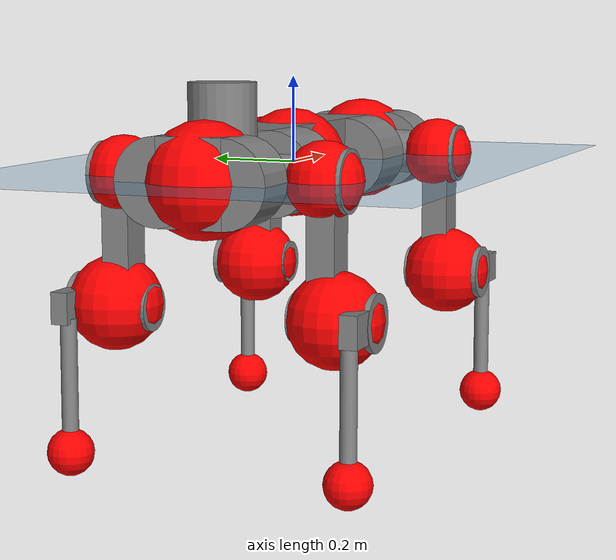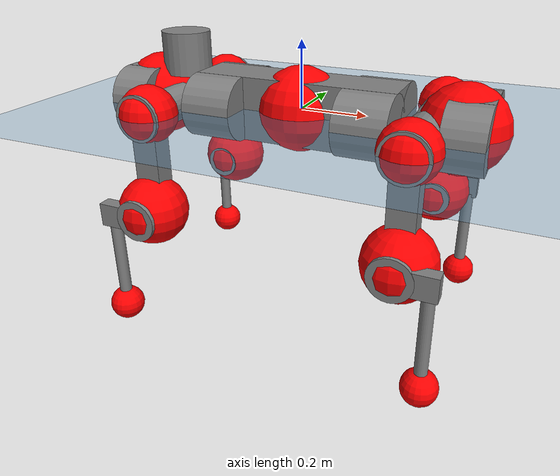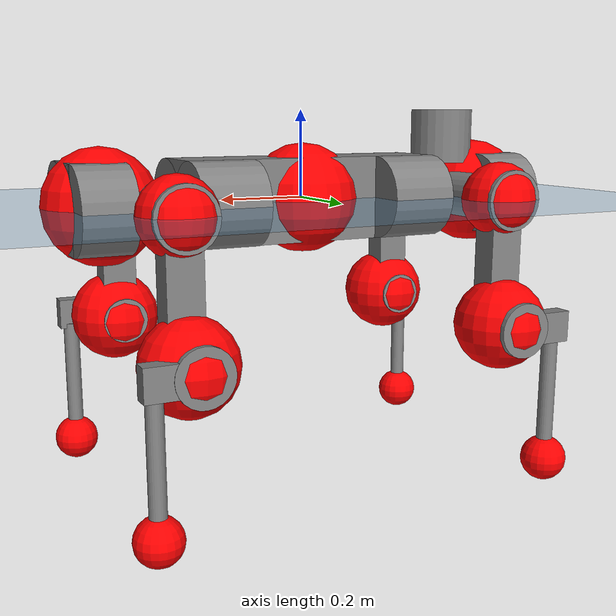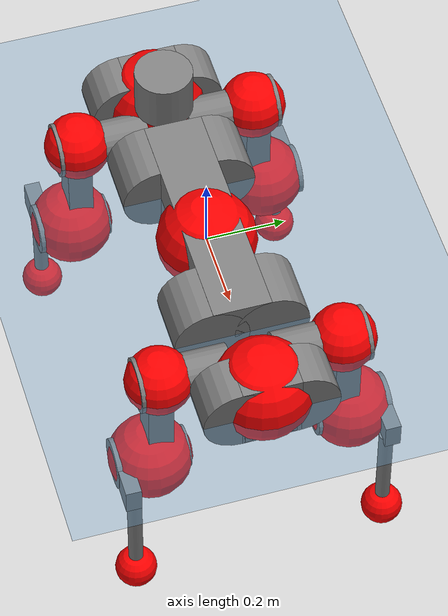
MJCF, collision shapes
<mujoco model="anymal_c">
  <compiler angle="radian" assetdir="assets" balanceinertia="true" inertiafromgeom="false"/>

  <option timestep="0.005" density="1.2" viscosity="2e-05"/>

  <size nkey="1"/>

  <visual>
    <quality shadowsize="8192"/>
    <map shadowclip="0.5"/>
  </visual>

  <default>
    <default class="/">
      <material specular="0" shininess="0.25"/>
      <geom contype="0" conaffinity="0" group="1" solref="-1000 -80"/>
      <site size="0.01 0.005 0.005" group="5"/>
      <general forcelimited="true" forcerange="-80 80" biastype="affine" gainprm="80" biasprm="0 -80 -2"/>
      <default class="anymal_c">
        <joint armature="0.01" damping="0.01" frictionloss="0.1"/>
        <default class="visual">
          <geom type="mesh" group="2"/>
          <default class="visual_zflip"/>
        </default>
        <default class="collision">
          <geom type="cylinder" group="3"/>
          <default class="foot">
            <geom size="0.03 0 0" type="sphere" condim="6" priority="1" friction="0.8 0.02 0.01" solimp="0.015 1 0.03"/>
          </default>
        </default>
      </default>
      <default class="reward_collision_sphere">
        <geom group="5" rgba="1 0 0 1"/>
      </default>
    </default>
  </default>

  <asset>
    <texture type="skybox" colorspace="auto" name="//unnamed_texture_0" builtin="gradient" rgb1="0.95 0.95 0.95" rgb2="0.95 0.95 0.95" width="100" height="600"/>
    <texture type="2d" colorspace="auto" name="texplane" builtin="checker" rgb1="0.345 0.575 0.748" rgb2="0.345 0.575 0.748" markrgb="1 1 1" width="512" height="512"/>
    <texture type="2d" colorspace="linear" name="base" file="base.png"/>
    <texture type="2d" colorspace="linear" name="top_shell" file="top_shell.png"/>
    <texture type="2d" colorspace="linear" name="bottom_shell" file="bottom_shell.png"/>
    <texture type="2d" colorspace="linear" name="remote" file="remote.png"/>
    <texture type="2d" colorspace="linear" name="hatch" file="hatch.png"/>
    <texture type="2d" colorspace="linear" name="handle" file="handle.png"/>
    <texture type="2d" colorspace="linear" name="face" file="face.png"/>
    <texture type="2d" colorspace="linear" name="battery" file="battery.png"/>
    <texture type="2d" colorspace="linear" name="lidar_cage" file="lidar_cage.png"/>
    <texture type="2d" colorspace="linear" name="depth_camera" file="depth_camera.png"/>
    <texture type="2d" colorspace="linear" name="wide_angle_camera" file="wide_angle_camera.png"/>
    <texture type="2d" colorspace="linear" name="lidar" file="lidar.png"/>
    <texture type="2d" colorspace="linear" name="drive" file="drive.png"/>
    <texture type="2d" colorspace="linear" name="hip_l" file="hip_l.png"/>
    <texture type="2d" colorspace="linear" name="shank_l" file="shank_l.png"/>
    <texture type="2d" colorspace="linear" name="foot" file="foot.png"/>
    <texture type="2d" colorspace="linear" name="thigh" file="thigh.png"/>
    <texture type="2d" colorspace="linear" name="shank_r" file="shank_r.png"/>
    <texture type="2d" colorspace="linear" name="hip_r" file="hip_r.png"/>
    <material name="MatPlane" class="/" texture="texplane" texuniform="true" texrepeat="2 2" specular="0.9" shininess="0.5"/>
    <material name="black_plastic" class="/" rgba="0.007 0.007 0.007 1"/>
    <material name="green" class="/" rgba="0.052 0.178 0.033 1"/>
    <material name="red" class="/" rgba="0.178 0.006 0.005 1"/>
    <material name="yellow" class="/" rgba="0.178 0.119 0.006 1"/>
    <material name="lwl" class="/" rgba="0.8 0.8 0.8 1"/>
    <material name="base" class="/" texture="base"/>
    <material name="top_shell" class="/" texture="top_shell"/>
    <material name="bottom_shell" class="/" texture="bottom_shell"/>
    <material name="hip_l" class="/" texture="hip_l"/>
    <material name="thigh" class="/" texture="thigh"/>
    <material name="shank_l" class="/" texture="shank_l"/>
    <material name="foot" class="/" texture="foot"/>
    <material name="hip_r" class="/" texture="hip_r"/>
    <material name="shank" class="/" texture="shank_r"/>
    <material name="hatch" class="/" texture="hatch"/>
    <material name="remote" class="/" texture="remote"/>
    <material name="handle" class="/" texture="handle"/>
    <material name="face" class="/" texture="face"/>
    <material name="depth_camera" class="/" texture="depth_camera"/>
    <material name="wide_angle_camera" class="/" texture="wide_angle_camera"/>
    <material name="battery" class="/" texture="battery"/>
    <material name="lidar_cage" class="/" texture="lidar_cage"/>
    <material name="lidar" class="/" texture="lidar"/>
    <material name="drive" class="/" texture="drive"/>
    <mesh name="base_0" class="/" file="base_0.obj"/>
    <mesh name="base_1" class="/" file="base_1.obj"/>
    <mesh name="base_2" class="/" file="base_2.obj"/>
    <mesh name="base_3" class="/" file="base_3.obj"/>
    <mesh name="base_4" class="/" file="base_4.obj"/>
    <mesh name="base_5" class="/" file="base_5.obj"/>
    <mesh name="top_shell" class="/" file="top_shell.obj"/>
    <mesh name="bottom_shell" class="/" file="bottom_shell.obj"/>
    <mesh name="remote" class="/" file="remote.obj"/>
    <mesh name="handle" class="/" file="handle.obj"/>
    <mesh name="face" class="/" file="face.obj"/>
    <mesh name="wide_angle_camera" class="/" file="wide_angle_camera.obj"/>
    <mesh name="depth_camera" class="/" file="depth_camera.obj"/>
    <mesh name="battery" class="/" file="battery.obj"/>
    <mesh name="lidar_cage" class="/" file="lidar_cage.obj"/>
    <mesh name="lidar" class="/" file="lidar.obj"/>
    <mesh name="drive" class="/" file="drive.obj"/>
    <mesh name="hip_l" class="/" file="hip_l.obj"/>
    <mesh name="thigh" class="/" file="thigh.obj"/>
    <mesh name="shank_l" class="/" file="shank_l.obj"/>
    <mesh name="foot" class="/" file="foot.obj"/>
    <mesh name="hip_r" class="/" file="hip_r.obj"/>
    <mesh name="hatch" class="/" file="hatch.obj"/>
    <mesh name="shank_r" class="/" file="shank_r.obj"/>
  </asset>

  <worldbody>
    <geom name="floor" class="/" size="100 100 0.125" type="plane" group="0" material="MatPlane"/>
    <light name="toplight_shadow" class="/" pos="0 0 5" dir="0.0990148 0.0990148 -0.990148" type="directional" ambient="0.04 0.04 0.04" diffuse="0.55 0.55 0.55" specular="0.12 0.12 0.12"/>
    <light name="toplight_fill" class="/" pos="0 0 5" dir="0.0990148 0.0990148 -0.990148" type="directional" castshadow="false" ambient="0.04 0.04 0.04" diffuse="0.3 0.3 0.3" specular="0.08 0.08 0.08"/>
    <body name="trunk" childclass="anymal_c" pos="-0.00351326 0.00173738 -0.00131868" quat="0.999999 -0.000413097 0.00107826 -0.000376599">
      <inertial pos="0.00268732 -0.00271683 0.0518215" quat="0.497582 0.50137 0.501035 0.500004" mass="23.4364" diaginertia="0.798717 0.916912 0.249584"/>
      <joint name="//unnamed_joint_0" type="free" armature="0" damping="0" frictionloss="0"/>
      <geom name="//unnamed_geom_1" class="visual" material="green" mesh="base_0"/>
      <geom name="//unnamed_geom_2" class="visual" material="yellow" mesh="base_1"/>
      <geom name="//unnamed_geom_3" class="visual" material="red" mesh="base_2"/>
      <geom name="//unnamed_geom_4" class="visual" material="black_plastic" mesh="base_3"/>
      <geom name="//unnamed_geom_5" class="visual" material="lwl" mesh="base_4"/>
      <geom name="//unnamed_geom_6" class="visual" material="base" mesh="base_5"/>
      <geom name="trunk_1" class="collision" size="0.307464 0.0742155 0.0954199" type="box"/>
      <geom name="trunk_2" class="collision" size="0.0954199 0.076866" pos="0.230986 0.0761753 0" quat="0.707107 0 0.707107 0"/>
      <geom name="trunk_3" class="collision" size="0.0954199 0.076866" pos="-0.230986 0.0761753 0" quat="0.707107 0 0.707107 0"/>
      <geom name="trunk_4" class="collision" size="0.0954199 0.076866" pos="0.230986 -0.0761753 0" quat="0.707107 0 0.707107 0"/>
      <geom name="trunk_5" class="collision" size="0.0954199 0.076866" pos="-0.230986 -0.0761753 0" quat="0.707107 0 0.707107 0"/>
      <geom name="//unnamed_geom_12" class="visual" material="top_shell" mesh="top_shell"/>
      <geom name="//unnamed_geom_13" class="visual" material="bottom_shell" mesh="bottom_shell"/>
      <geom name="//unnamed_geom_14" class="visual" material="remote" mesh="remote"/>
      <geom name="//unnamed_geom_15" class="visual" material="handle" mesh="handle"/>
      <geom name="//unnamed_geom_16" class="visual" pos="0.440201 0 0" quat="1 0 0 0" material="face" mesh="face"/>
      <geom name="trunk_6" class="collision" size="0.0583122 0.0742155 0.0954199" pos="0.498611 0 0" type="box"/>
      <geom name="//unnamed_geom_18" class="collision" size="0.0954199 0.0583122" pos="0.498611 0.0761753 0" quat="0.707107 0 0.707107 0"/>
      <geom name="//unnamed_geom_19" class="collision" size="0.0954199 0.0583122" pos="0.498611 -0.0761753 0" quat="0.707107 0 0.707107 0"/>
      <geom name="//unnamed_geom_20" class="visual" pos="0.490273 0 -0.029849" quat="0.965926 0 0.258819 0" material="depth_camera" mesh="depth_camera"/>
      <geom name="//unnamed_geom_21" class="visual" pos="0.544809 0 0.0154257" material="wide_angle_camera" mesh="wide_angle_camera"/>
      <geom name="//unnamed_geom_22" class="visual_zflip" pos="-0.440201 0 0" quat="0 0 0 1" material="face" mesh="face"/>
      <geom name="trunk_7" class="collision" size="0.0583122 0.0742155 0.0954199" pos="-0.498611 0 0" quat="0 0 0 1" type="box"/>
      <geom name="//unnamed_geom_24" class="collision" size="0.0954199 0.0583122" pos="-0.498611 -0.0761753 0" quat="0 -0.707107 0 0.707107"/>
      <geom name="//unnamed_geom_25" class="collision" size="0.0954199 0.0583122" pos="-0.498611 0.0761753 0" quat="0 -0.707107 0 0.707107"/>
      <geom name="//unnamed_geom_26" class="visual" pos="-0.490273 0 -0.029849" quat="0 -0.258819 0 0.965926" material="depth_camera" mesh="depth_camera"/>
      <geom name="//unnamed_geom_27" class="visual_zflip" pos="-0.544809 0 0.0154257" quat="0 0 0 1" material="wide_angle_camera" mesh="wide_angle_camera"/>
      <geom name="//unnamed_geom_28" class="visual" material="battery" mesh="battery"/>
      <geom name="//unnamed_geom_29" class="visual" pos="0 0.0835478 0.0301742" quat="0.683013 -0.183013 0.183013 0.683013" material="depth_camera" mesh="depth_camera"/>
      <geom name="//unnamed_geom_30" class="visual" pos="0 -0.0835478 0.0301742" quat="0.683013 0.183013 0.183013 -0.683013" material="depth_camera" mesh="depth_camera"/>
      <geom name="//unnamed_geom_31" class="visual" pos="-0.38657 0 0.0757374" quat="1 0 0 0" material="lidar_cage" mesh="lidar_cage"/>
      <geom name="trunk_8" class="collision" size="0.0742155 0.0636133" pos="-0.38657 0 0.137564"/>
      <geom name="//unnamed_geom_33" class="visual" pos="-0.38657 1.02984e-05 0.146529" quat="0.707107 0 0 -0.707107" material="lidar" mesh="lidar"/>
      <geom name="//unnamed_geom_34" class="visual" pos="0.318495 0.113154 9.96672e-10" quat="0.258819 0.965926 0 0" material="drive" mesh="drive"/>
      <geom name="//unnamed_geom_35" class="visual" pos="0.318495 -0.113154 -9.96672e-10" quat="0.258819 -0.965926 0 0" material="drive" mesh="drive"/>
      <geom name="//unnamed_geom_36" class="visual" pos="-0.318495 0.113154 -9.96672e-10" quat="0 0 0.965926 -0.258819" material="drive" mesh="drive"/>
      <geom name="//unnamed_geom_37" class="visual" pos="-0.318495 -0.113154 9.96672e-10" quat="0 0 -0.965926 -0.258819" material="drive" mesh="drive"/>
      <geom name="//unnamed_geom_38" class="visual" pos="0.123193 0 0.0752221" quat="1 0 0 0" material="hatch" mesh="hatch"/>
      <geom name="//unnamed_geom_39" class="reward_collision_sphere" size="0.127227"/>
      <geom name="//unnamed_geom_40" class="reward_collision_sphere" size="0.127227" pos="0.477902 0 0"/>
      <geom name="//unnamed_geom_41" class="reward_collision_sphere" size="0.127227" pos="-0.477902 0 0"/>
      <site name="imu" pos="0.276007 -0.00164864 0.0721878" size="0.0106022"/>
      <camera name="track" pos="0 -2.17644 0" quat="0.707107 0.707107 0 0" mode="trackcom"/>
      <camera name="ego_camera" pos="0.477902 0 -0.0412176" quat="-0.5 -0.5 0.5 0.5"/>
      <body name="LF_HIP" pos="0.321491 0.113687 -0.000804803" quat="0.258242 0.966079 0.000928872 0.000899418">
        <inertial pos="0.0645466 -0.0181262 -0.00773963" quat="-0.131219 0.707912 -0.135975 0.680553" mass="3.19141" diaginertia="0.00762161 0.00757378 0.00370277"/>
        <joint name="LF_HAA" pos="0 0 0" axis="0.999527 0.00943867 -0.0292632" stiffness="0.0175468" range="-0.749271 0.483562" armature="0.0131404" damping="0.024275" frictionloss="0.111199"/>
        <geom name="//unnamed_geom_42" class="visual" pos="0 5.86297e-05 -9.62988e-06" quat="0.258819 -0.965926 0 0" material="hip_l" mesh="hip_l"/>
        <geom name="//unnamed_geom_43" class="visual" pos="0.0636141 -0.0774066 -0.0442634" quat="0.183013 -0.683013 0.683013 0.183013" material="drive" mesh="drive"/>
        <geom name="//unnamed_geom_44" class="collision" size="0.0530111 0.0742155" pos="0.0636141 -0.0130149 -0.00711519" quat="-0.353553 -0.612372 0.612372 -0.353553"/>
        <body name="LF_THIGH" pos="0.0640132 -0.0792898 -0.0428689" quat="0.183512 -0.682926 0.682894 0.183281">
          <inertial pos="0.0322338 0.000367371 -0.247776" quat="0.993574 -0.00922686 -0.0787827 0.0807383" mass="3.60057" diaginertia="0.0399065 0.0445203 0.00472521"/>
          <joint name="LF_HFE" pos="0 0 0" axis="0.999986 0.00188322 -0.00499652" stiffness="0.00165996" range="-3.11287 3.13828" armature="0.00913865" damping="0.00680275" frictionloss="0.104851"/>
          <geom name="//unnamed_geom_45" class="visual" pos="-0.000521537 -8.21821e-07 0" quat="0.707107 0 0 -0.707107" material="thigh" mesh="thigh"/>
          <geom name="//unnamed_geom_46" class="collision" size="0.0689144 0.0424088" pos="0.0424802 0 0" quat="0.5 0.5 -0.5 -0.5"/>
          <geom name="//unnamed_geom_47" class="collision" size="0.0397583 0.0318066 0.149824" pos="0.0318601 0 -0.145616" quat="0.707107 0 0 -0.707107" type="box"/>
          <geom name="//unnamed_geom_48" class="visual" pos="0.106519 0 -0.293675" quat="1 0 0 0" material="drive" mesh="drive"/>
          <geom name="//unnamed_geom_49" class="collision" size="0.0530111 0.0742155" pos="0.0321788 0 -0.293675" quat="0.707107 0 0.707107 0"/>
          <geom name="//unnamed_geom_50" class="reward_collision_sphere" size="0.0848177" pos="0.0265501 0 0"/>
          <body name="LF_SHANK" pos="0.107391 0.00560272 -0.296545" quat="1 0.000168073 0.000156048 0.000578161">
            <inertial pos="0.00688837 -0.0690231 -0.0825625" quat="0.993031 -0.112769 0.0201973 -0.0276392" mass="0.70023" diaginertia="0.0140112 0.0139482 0.00134399"/>
            <joint name="LF_KFE" pos="0 0 0" axis="0.99992 -0.00810176 -0.00970264" range="-3.15291 3.09247" armature="0.0101514" damping="0.0147393" frictionloss="0.114974"/>
            <geom name="//unnamed_geom_51" class="visual" pos="-0.000170062 -0.000906779 0" quat="0.707107 0 0 -0.707107" material="shank_l" mesh="shank_l"/>
            <geom name="LF_kfe_act" class="collision" size="0.0636133 0.0212044" pos="0.0212401 0 0" quat="0.5 0.5 -0.5 -0.5"/>
            <geom name="//unnamed_geom_53" class="collision" size="0.0609617 0.0357825 0.0201442" pos="0.0212401 -0.0625714 0" quat="0.5 0.5 -0.5 -0.5" type="box"/>
            <geom name="//unnamed_geom_54" class="visual" pos="0.0138592 -0.096001 -0.348258" quat="0.382683 0 0 -0.92388" material="foot" mesh="foot"/>
            <geom name="LF_calf" class="collision" size="0.0185539 0.149758" pos="0.0138592 -0.0957088 -0.174129" quat="0.707107 0 0 -0.707107"/>
            <geom name="LF_foot" class="foot" size="0.0310851" pos="0.0138592 -0.0957088 -0.325073" quat="0.707107 0 0 -0.707107"/>
            <geom name="//unnamed_geom_57" class="reward_collision_sphere" size="0.106022" pos="-0.0531002 0 0"/>
            <geom name="//unnamed_geom_58" class="reward_collision_sphere" size="0.0530111" pos="0.0138592 -0.0957088 -0.325073"/>
            <site name="LF_foot" class="foot" pos="0.0138592 -0.0957088 -0.325073" quat="0.707107 0 0 -0.707107" size="0.0106022"/>
          </body>
        </body>
      </body>
      <body name="RF_HIP" pos="0.323991 -0.118674 0.00231785" quat="0.258313 -0.966061 0.000859985 -0.000745091">
        <inertial pos="0.0551387 0.0194243 -0.00453675" quat="0.13502 0.679418 0.128443 0.709692" mass="3.20684" diaginertia="0.00735743 0.00712531 0.00358555"/>
        <joint name="RF_HAA" pos="0 0 0" axis="0.99987 0.00909211 0.0133504" range="-0.406583 0.76384" armature="0.0102013" damping="0.0202858" frictionloss="0.120122"/>
        <geom name="//unnamed_geom_59" class="visual" pos="0 -5.86293e-05 -9.62986e-06" quat="0.258819 0.965926 0 0" material="hip_r" mesh="hip_r"/>
        <geom name="//unnamed_geom_60" class="visual" pos="0.0636141 0.0774066 -0.0442634" quat="0.183013 0.683013 0.683013 -0.183013" material="drive" mesh="drive"/>
        <geom name="//unnamed_geom_61" class="collision" size="0.0530111 0.0742155" pos="0.0636141 0.0130149 -0.00711519" quat="-0.353553 0.612372 0.612372 0.353553"/>
        <body name="RF_THIGH" pos="0.0640189 0.0776464 -0.0432945" quat="0.182963 0.682591 0.683231 -0.183818">
          <inertial pos="0.0319827 -0.00620577 -0.250739" quat="0.992915 -0.00468794 -0.0791044 0.0885469" mass="3.7659" diaginertia="0.0406662 0.0481631 0.00497053"/>
          <joint name="RF_HFE" pos="0 0 0" axis="0.999999 -0.00133765 0.000456033" stiffness="0.00792494" range="-3.18497 3.1574" armature="0.00925689" damping="0.0176116" frictionloss="0.11875"/>
          <geom name="//unnamed_geom_62" class="visual" pos="-0.000521537 -8.21821e-07 0" quat="0.707107 0 0 -0.707107" material="thigh" mesh="thigh"/>
          <geom name="//unnamed_geom_63" class="collision" size="0.0689144 0.0424088" pos="0.0424802 0 0" quat="0.5 0.5 0.5 0.5"/>
          <geom name="//unnamed_geom_64" class="collision" size="0.0397583 0.0318066 0.149824" pos="0.0318601 0 -0.145616" quat="0.707107 0 0 0.707107" type="box"/>
          <geom name="//unnamed_geom_65" class="visual" pos="0.106519 0 -0.293675" quat="1 0 0 0" material="drive" mesh="drive"/>
          <geom name="//unnamed_geom_66" class="collision" size="0.0530111 0.0742155" pos="0.0321788 0 -0.293675" quat="0.707107 0 0.707107 0"/>
          <geom name="//unnamed_geom_67" class="reward_collision_sphere" size="0.0848177" pos="0.0265501 0 0"/>
          <body name="RF_SHANK" pos="0.10474 0.00269177 -0.296561" quat="0.999997 0.00125596 0.0011743 -0.00200391">
            <inertial pos="-0.000540243 0.0671908 -0.0857253" quat="0.993733 0.107519 0.0060245 0.0299684" mass="0.704525" diaginertia="0.0134749 0.0131899 0.00118064"/>
            <joint name="RF_KFE" pos="0 0 0" axis="0.999952 0.00760721 -0.0061169" range="-3.0511 3.11126" armature="0.0118688" damping="0" frictionloss="0.0885097"/>
            <geom name="//unnamed_geom_68" class="visual" pos="-0.000170061 0.000906777 0" quat="0.707107 0 0 0.707107" material="shank" mesh="shank_r"/>
            <geom name="RF_kfe_act" class="collision" size="0.0636133 0.0212044" pos="0.0212401 0 0" quat="0.5 0.5 0.5 0.5"/>
            <geom name="//unnamed_geom_70" class="collision" size="0.0609617 0.0357825 0.0201442" pos="0.0212401 0.0625714 0" quat="0.5 0.5 0.5 0.5" type="box"/>
            <geom name="//unnamed_geom_71" class="visual" pos="0.0138591 0.096001 -0.348258" quat="0.382683 0 0 0.92388" material="foot" mesh="foot"/>
            <geom name="RF_calf" class="collision" size="0.0185539 0.149758" pos="0.0138592 0.0957088 -0.174129" quat="0.707107 0 0 0.707107"/>
            <geom name="RF_foot" class="foot" size="0.0292223" pos="0.0138592 0.0957088 -0.325073" quat="0.707107 0 0 0.707107"/>
            <geom name="//unnamed_geom_74" class="reward_collision_sphere" size="0.106022" pos="-0.0531002 0 0"/>
            <geom name="//unnamed_geom_75" class="reward_collision_sphere" size="0.0530111" pos="0.0138592 0.0957088 -0.325073"/>
            <site name="RF_foot" class="foot" pos="0.0138592 0.0957088 -0.325073" quat="0.707107 0 0 0.707107" size="0.0106022"/>
          </body>
        </body>
      </body>
      <body name="LH_HIP" pos="-0.324952 0.116526 6.25122e-05" quat="0.00042741 0.000559463 0.965818 -0.25922">
        <inertial pos="0.055719 0.0226563 -0.00947204" quat="0.131467 0.668288 0.129082 0.720725" mass="3.30459" diaginertia="0.00775595 0.00755066 0.00400213"/>
        <joint name="LH_HAA" pos="0 0 0" axis="0.999975 -0.00271489 -0.00658931" stiffness="0.000647767" range="-0.510353 0.757208" armature="0.0104858" damping="0.00815089" frictionloss="0.0953264"/>
        <geom name="//unnamed_geom_76" class="visual" pos="0 -5.86293e-05 -9.62986e-06" quat="-0.258819 -0.965926 0 0" material="hip_r" mesh="hip_r"/>
        <geom name="//unnamed_geom_77" class="visual" pos="0.0636141 0.0774066 -0.0442634" quat="0.183013 0.683013 0.683013 -0.183013" material="drive" mesh="drive"/>
        <geom name="//unnamed_geom_78" class="collision" size="0.0530111 0.0742155" pos="0.0636141 0.0130149 -0.00711519" quat="-0.353553 0.612372 0.612372 0.353553"/>
        <body name="LH_THIGH" pos="0.0636212 0.0805826 -0.0458091" quat="0.183987 0.682689 0.683166 -0.18267">
          <inertial pos="0.0352027 -0.00485905 -0.251816" quat="0.993088 0.00374224 -0.0794015 0.0863555" mass="3.71035" diaginertia="0.040608 0.0455087 0.0051257"/>
          <joint name="LH_HFE" pos="0 0 0" axis="0.999809 -0.00220553 -0.0194168" stiffness="0.00672587" range="-3.15956 3.13279" armature="0.0083335" damping="0.0185168" frictionloss="0.0914967"/>
          <geom name="//unnamed_geom_79" class="visual" pos="-0.000521537 -8.21821e-07 0" quat="0.707107 0 0 -0.707107" material="thigh" mesh="thigh"/>
          <geom name="//unnamed_geom_80" class="collision" size="0.0689144 0.0424088" pos="0.0424802 0 0" quat="0.5 0.5 -0.5 -0.5"/>
          <geom name="//unnamed_geom_81" class="collision" size="0.0397583 0.0318066 0.149824" pos="0.0318601 0 -0.145616" quat="0.707107 0 0 -0.707107" type="box"/>
          <geom name="//unnamed_geom_82" class="visual" pos="0.106519 0 -0.293675" quat="1 0 0 0" material="drive" mesh="drive"/>
          <geom name="//unnamed_geom_83" class="collision" size="0.0530111 0.0742155" pos="0.0321788 0 -0.293675" quat="0.707107 0 0.707107 0"/>
          <geom name="//unnamed_geom_84" class="reward_collision_sphere" size="0.0848177" pos="0.0265501 0 0"/>
          <body name="LH_SHANK" pos="0.106909 -0.00277866 -0.288009" quat="0.999996 -0.00138855 -0.00239532 0.000563897">
            <inertial pos="0.00760751 0.0668098 -0.0895526" quat="0.992662 0.118294 -0.0016278 0.0250161" mass="0.728431" diaginertia="0.0135792 0.0137465 0.00129073"/>
            <joint name="LH_KFE" pos="0 0 0" axis="0.999968 0.000216234 0.00795849" range="-3.09835 3.14743" armature="0.0118716" damping="0.00626748" frictionloss="0.116436"/>
            <geom name="//unnamed_geom_85" class="visual" pos="-0.000170061 0.000906777 0" quat="-0.707107 0 0 -0.707107" material="shank" mesh="shank_r"/>
            <geom name="LH_kfe_act" class="collision" size="0.0636133 0.0212044" pos="0.0212401 0 0" quat="0.5 0.5 -0.5 -0.5"/>
            <geom name="//unnamed_geom_87" class="collision" size="0.0609617 0.0357825 0.0201442" pos="0.0212401 0.0625714 0" quat="0.5 0.5 -0.5 -0.5" type="box"/>
            <geom name="//unnamed_geom_88" class="visual" pos="0.0138591 0.096001 -0.348258" quat="-0.382683 0 0 -0.92388" material="foot" mesh="foot"/>
            <geom name="LH_calf" class="collision" size="0.0185539 0.149758" pos="0.0138592 0.0957088 -0.174129" quat="0.707107 0 0 -0.707107"/>
            <geom name="LH_foot" class="foot" size="0.0346597" pos="0.0138592 0.0957088 -0.325073" quat="0.707107 0 0 -0.707107"/>
            <geom name="//unnamed_geom_91" class="reward_collision_sphere" size="0.106022" pos="-0.0531002 0 0"/>
            <geom name="//unnamed_geom_92" class="reward_collision_sphere" size="0.0530111" pos="0.0138592 0.0957088 -0.325073"/>
            <site name="LH_foot" class="foot" pos="0.0138592 0.0957088 -0.325073" quat="0.707107 0 0 -0.707107" size="0.0106022"/>
          </body>
        </body>
      </body>
      <body name="RH_HIP" pos="-0.313818 -0.111004 -0.000652141" quat="0.000423685 -0.000285484 -0.965768 -0.259407">
        <inertial pos="0.0588173 -0.0160641 -0.00945117" quat="-0.131966 0.719188 -0.151258 0.665188" mass="3.23017" diaginertia="0.00769544 0.00723091 0.00369676"/>
        <joint name="RH_HAA" pos="0 0 0" axis="0.999673 -0.0251302 0.00479495" range="-0.728016 0.535266" armature="0.00965274" damping="0.0143452" frictionloss="0.105777"/>
        <geom name="//unnamed_geom_93" class="visual" pos="0 5.86297e-05 -9.62988e-06" quat="-0.258819 0.965926 0 0" material="hip_l" mesh="hip_l"/>
        <geom name="//unnamed_geom_94" class="visual" pos="0.0636141 -0.0774066 -0.0442634" quat="-0.183013 0.683013 -0.683013 -0.183013" material="drive" mesh="drive"/>
        <geom name="//unnamed_geom_95" class="collision" size="0.0530111 0.0742155" pos="0.0636141 -0.0130149 -0.00711519" quat="0.353553 0.612372 -0.612372 0.353553"/>
        <body name="RH_THIGH" pos="0.0660525 -0.0802971 -0.0469244" quat="-0.183067 0.683697 -0.682518 -0.182244">
          <inertial pos="0.0354025 -0.00159385 -0.250811" quat="0.996051 -0.00640506 -0.0656825 0.0593928" mass="3.52542" diaginertia="0.0402799 0.0438771 0.00447071"/>
          <joint name="RH_HFE" pos="0 0 0" axis="0.999904 -0.00696868 -0.0119816" stiffness="0.00719699" range="-3.14745 3.1825" armature="0.0093003" damping="0.0254782" frictionloss="0.101344"/>
          <geom name="//unnamed_geom_96" class="visual" pos="-0.000521537 -8.21821e-07 0" quat="0.707107 0 0 -0.707107" material="thigh" mesh="thigh"/>
          <geom name="//unnamed_geom_97" class="collision" size="0.0689144 0.0424088" pos="0.0424802 0 0" quat="0.5 0.5 0.5 0.5"/>
          <geom name="//unnamed_geom_98" class="collision" size="0.0397583 0.0318066 0.149824" pos="0.0318601 0 -0.145616" quat="0.707107 0 0 0.707107" type="box"/>
          <geom name="//unnamed_geom_99" class="visual" pos="0.106519 0 -0.293675" quat="1 0 0 0" material="drive" mesh="drive"/>
          <geom name="//unnamed_geom_100" class="collision" size="0.0530111 0.0742155" pos="0.0321788 0 -0.293675" quat="0.707107 0 0.707107 0"/>
          <geom name="//unnamed_geom_101" class="reward_collision_sphere" size="0.0848177" pos="0.0265501 0 0"/>
          <body name="RH_SHANK" pos="0.104965 -6.01855e-05 -0.294219" quat="1 0.000214325 0.000104764 -9.05317e-05">
            <inertial pos="0.00918383 -0.061368 -0.0876061" quat="0.992971 -0.116635 -0.000249525 -0.0201059" mass="0.662465" diaginertia="0.0135533 0.0132708 0.0012626"/>
            <joint name="RH_KFE" pos="0 0 0" axis="1 0.000157349 -0.000256478" range="-3.16796 3.04898" armature="0.0105947" damping="0.0176843" frictionloss="0.080892"/>
            <geom name="//unnamed_geom_102" class="visual" pos="-0.000170062 -0.000906779 0" quat="0.707107 0 0 -0.707107" material="shank_l" mesh="shank_l"/>
            <geom name="RH_kfe_act" class="collision" size="0.0636133 0.0212044" pos="0.0212401 0 0" quat="0.5 0.5 0.5 0.5"/>
            <geom name="//unnamed_geom_104" class="collision" size="0.0609617 0.0357825 0.0201442" pos="0.0212401 -0.0625714 0" quat="0.5 0.5 0.5 0.5" type="box"/>
            <geom name="//unnamed_geom_105" class="visual" pos="0.0138592 -0.096001 -0.348258" quat="0.382683 0 0 -0.92388" material="foot" mesh="foot"/>
            <geom name="RH_calf" class="collision" size="0.0185539 0.149758" pos="0.0138592 -0.0957088 -0.174129" quat="0.707107 0 0 0.707107"/>
            <geom name="RH_foot" class="foot" size="0.0264828" pos="0.0138592 -0.0957088 -0.325073" quat="0.707107 0 0 0.707107"/>
            <geom name="//unnamed_geom_108" class="reward_collision_sphere" size="0.106022" pos="-0.0531002 0 0"/>
            <geom name="//unnamed_geom_109" class="reward_collision_sphere" size="0.0530111" pos="0.0138592 -0.0957088 -0.325073"/>
            <site name="RH_foot" class="foot" pos="0.0138592 -0.0957088 -0.325073" quat="0.707107 0 0 0.707107" size="0.0106022"/>
          </body>
        </body>
      </body>
    </body>
  </worldbody>

  <contact>
    <pair class="/" geom1="floor" geom2="LF_foot" name="//unnamed_contact_0"/>
    <pair class="/" geom1="floor" geom2="RF_foot" name="//unnamed_contact_1"/>
    <pair class="/" geom1="floor" geom2="LH_foot" name="//unnamed_contact_2"/>
    <pair class="/" geom1="floor" geom2="RH_foot" name="//unnamed_contact_3"/>
  </contact>

  <actuator>
    <general name="LF_HAA" class="/" joint="LF_HAA" forcerange="-84.9768 84.9768" gainprm="85.6821" biasprm="0 -85.6821 -2.27074"/>
    <general name="LF_HFE" class="/" joint="LF_HFE" forcerange="-93.3841 93.3841" gainprm="85.6821" biasprm="0 -85.6821 -2.27074"/>
    <general name="LF_KFE" class="/" joint="LF_KFE" forcerange="-89.5516 89.5516" gainprm="85.6821" biasprm="0 -85.6821 -2.27074"/>
    <general name="RF_HAA" class="/" joint="RF_HAA" forcerange="-82.6263 82.6263" gainprm="85.6821" biasprm="0 -85.6821 -2.27074"/>
    <general name="RF_HFE" class="/" joint="RF_HFE" forcerange="-95.2156 95.2156" gainprm="85.6821" biasprm="0 -85.6821 -2.27074"/>
    <general name="RF_KFE" class="/" joint="RF_KFE" forcerange="-85.0503 85.0503" gainprm="85.6821" biasprm="0 -85.6821 -2.27074"/>
    <general name="LH_HAA" class="/" joint="LH_HAA" forcerange="-84.1061 84.1061" gainprm="85.6821" biasprm="0 -85.6821 -2.27074"/>
    <general name="LH_HFE" class="/" joint="LH_HFE" forcerange="-84.2035 84.2035" gainprm="85.6821" biasprm="0 -85.6821 -2.27074"/>
    <general name="LH_KFE" class="/" joint="LH_KFE" forcerange="-84.0075 84.0075" gainprm="85.6821" biasprm="0 -85.6821 -2.27074"/>
    <general name="RH_HAA" class="/" joint="RH_HAA" forcerange="-83.6702 83.6702" gainprm="85.6821" biasprm="0 -85.6821 -2.27074"/>
    <general name="RH_HFE" class="/" joint="RH_HFE" forcerange="-92.8898 92.8898" gainprm="85.6821" biasprm="0 -85.6821 -2.27074"/>
    <general name="RH_KFE" class="/" joint="RH_KFE" forcerange="-102.984 102.984" gainprm="85.6821" biasprm="0 -85.6821 -2.27074"/>
  </actuator>

  <sensor>
    <gyro site="imu" name="imu_angular_velocity"/>
    <velocimeter site="imu" name="imu_linear_velocity"/>
    <framelinvel objtype="site" objname="LF_foot" name="LF_foot_global_linear_velocity"/>
    <framelinvel objtype="site" objname="RF_foot" name="RF_foot_global_linear_velocity"/>
    <framelinvel objtype="site" objname="LH_foot" name="LH_foot_global_linear_velocity"/>
    <framelinvel objtype="site" objname="RH_foot" name="RH_foot_global_linear_velocity"/>
  </sensor>

  <keyframe>
    <key name="home" qpos="0 0 0.55 1 0 0 0 0 0.4 -0.8 0 -0.4 0.8 0 -0.4 0.8 0 0.4 -0.8"/>
  </keyframe>
</mujoco>
